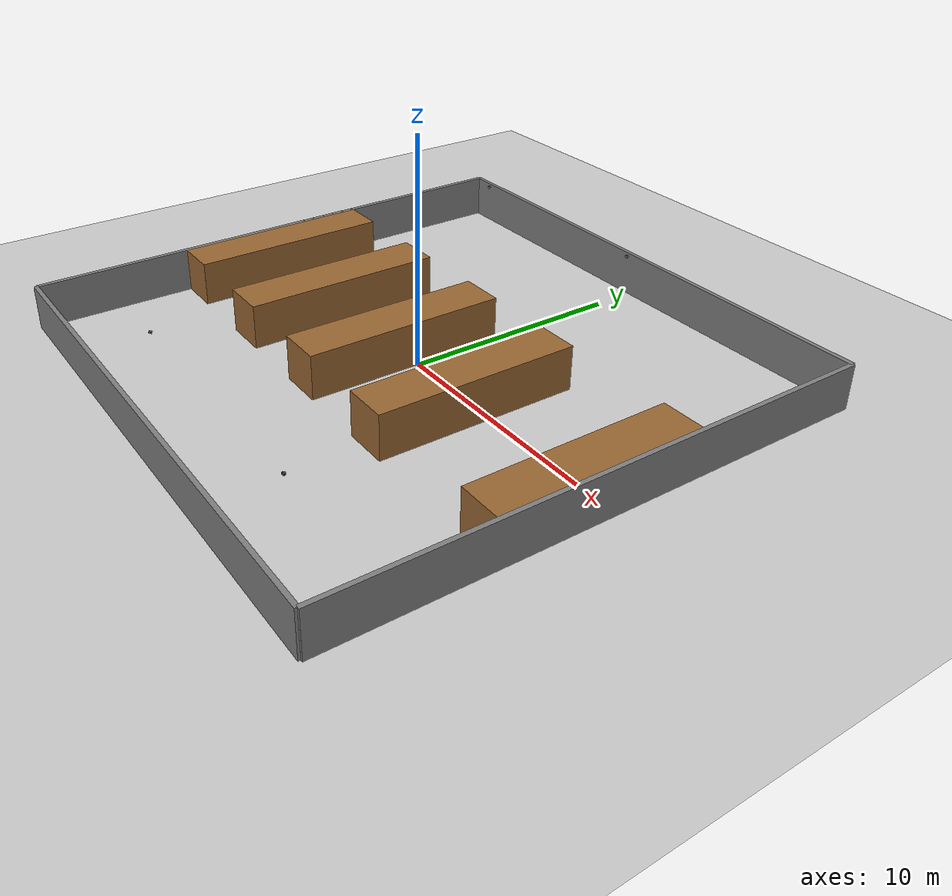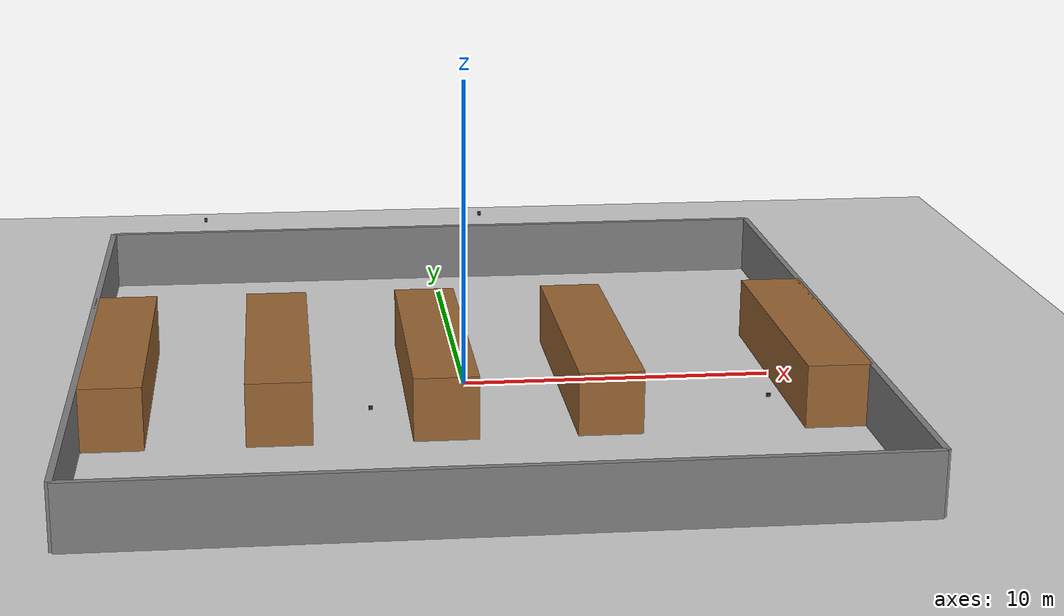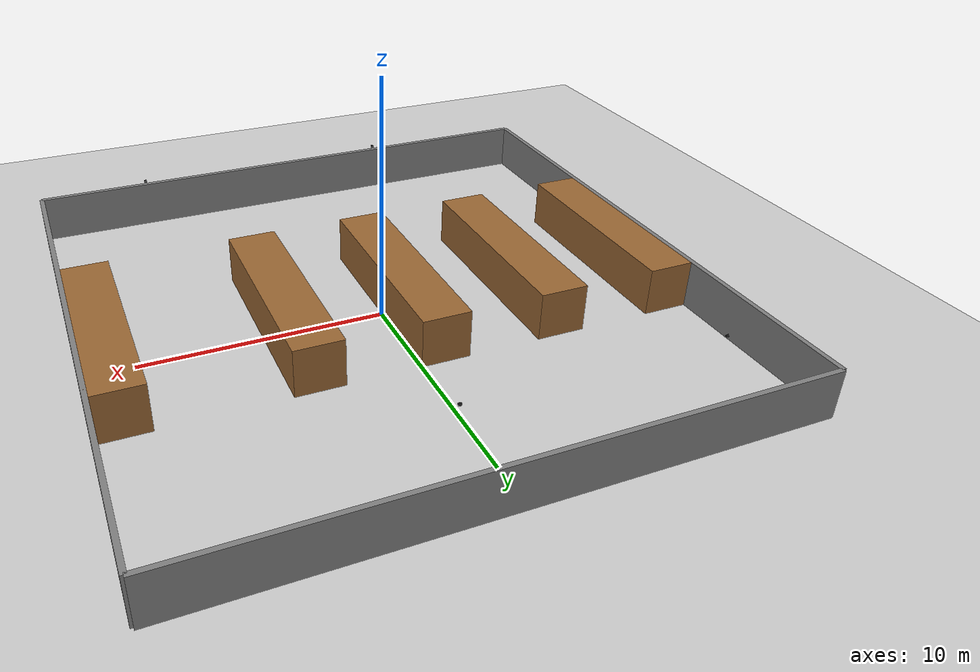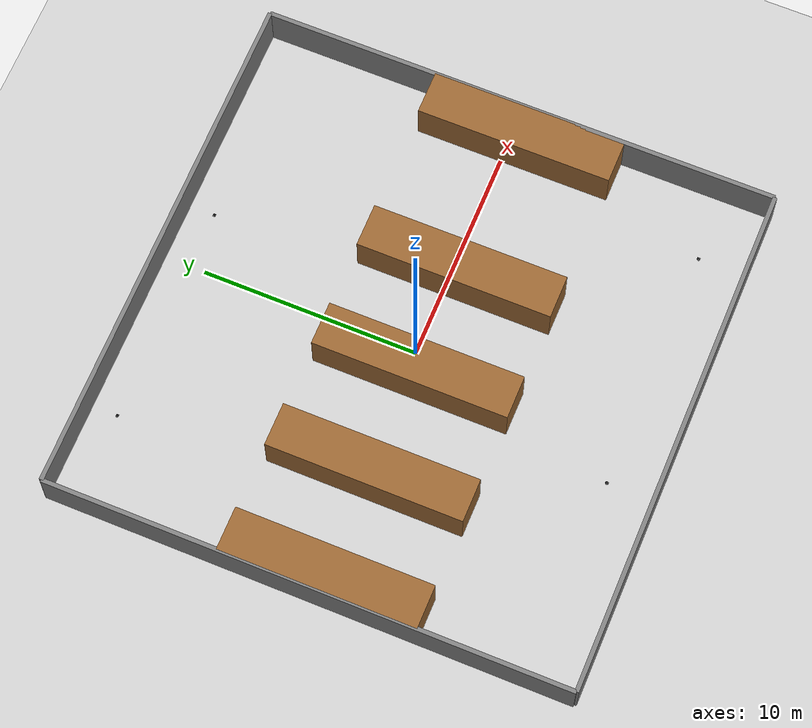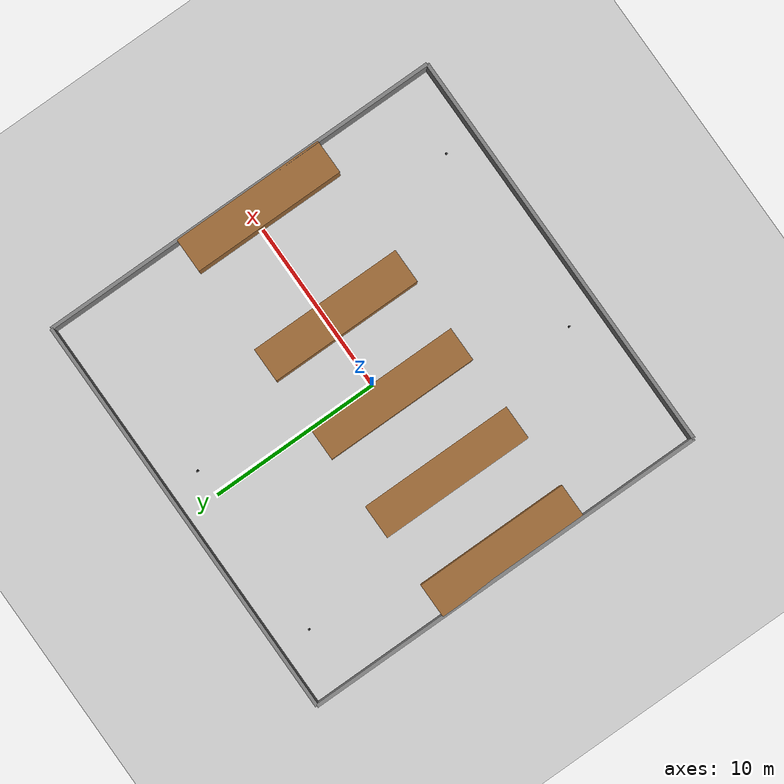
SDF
<?xml version="1.0" ?>
<!-- Warehouse world for PedSim + Gazebo -->
<sdf version="1.5">
  <world name="warehouse">

    <!-- Ground Plane -->
    <include>
      <uri>model://ground_plane</uri>
    </include>

    <include>
      <uri>model://sun</uri>
    </include>

    <!-- Physics settings -->
    <physics type="ode">
      <real_time_update_rate>1000.0</real_time_update_rate>
      <max_step_size>0.001</max_step_size>
      <real_time_factor>1</real_time_factor>
    </physics>

    <!-- Outer walls -->
    <!-- Wall: Left (-12, y) -->
    <model name='wall_left'>
      <static>1</static>
      <link name='link'>
        <pose>-12.0 0.0 1.0 0 0 1.5708</pose>
        <collision name='collision'>
          <geometry>
            <box><size>24.0 0.2 2.0</size></box>
          </geometry>
        </collision>
        <visual name='visual'>
          <geometry>
            <box><size>24.0 0.2 2.0</size></box>
          </geometry>
          <material>
            <ambient>0.5 0.5 0.5 1</ambient>
          </material>
        </visual>
      </link>
    </model>

    <!-- Wall: Right (12, y) -->
    <model name='wall_right'>
      <static>1</static>
      <link name='link'>
        <pose>12.0 0.0 1.0 0 0 1.5708</pose>
        <collision name='collision'>
          <geometry>
            <box><size>24.0 0.2 2.0</size></box>
          </geometry>
        </collision>
        <visual name='visual'>
          <geometry>
            <box><size>24.0 0.2 2.0</size></box>
          </geometry>
          <material>
            <ambient>0.5 0.5 0.5 1</ambient>
          </material>
        </visual>
      </link>
    </model>

    <!-- Wall: Top (x, 12) -->
    <model name='wall_top'>
      <static>1</static>
      <link name='link'>
        <pose>0.0 12.0 1.0 0 0 0</pose>
        <collision name='collision'>
          <geometry>
            <box><size>24.0 0.2 2.0</size></box>
          </geometry>
        </collision>
        <visual name='visual'>
          <geometry>
            <box><size>24.0 0.2 2.0</size></box>
          </geometry>
          <material>
            <ambient>0.5 0.5 0.5 1</ambient>
          </material>
        </visual>
      </link>
    </model>

    <!-- Wall: Bottom (x, -12) -->
    <model name='wall_bottom'>
      <static>1</static>
      <link name='link'>
        <pose>0.0 -12.0 1.0 0 0 0</pose>
        <collision name='collision'>
          <geometry>
            <box><size>24.0 0.2 2.0</size></box>
          </geometry>
        </collision>
        <visual name='visual'>
          <geometry>
            <box><size>24.0 0.2 2.0</size></box>
          </geometry>
          <material>
            <ambient>0.5 0.5 0.5 1</ambient>
          </material>
        </visual>
      </link>
    </model>

    <!-- Shelf 1: x=-11, y from -5 to 4 -->
    <model name='shelf_1'>
      <static>1</static>
      <link name='link'>
        <pose>-11.0 -0.5 1.0 0 0 0</pose>
        <collision name='collision'>
          <geometry>
            <box><size>2.0 9.0 2.0</size></box>
          </geometry>
        </collision>
        <visual name='visual'>
          <geometry>
            <box><size>2.0 9.0 2.0</size></box>
          </geometry>
          <material>
            <ambient>0.6 0.4 0.2 1</ambient>
          </material>
        </visual>
      </link>
    </model>

    <!-- Shelf 2: x=-6, y from -5 to 4 -->
    <model name='shelf_2'>
      <static>1</static>
      <link name='link'>
        <pose>-6.0 -0.5 1.0 0 0 0</pose>
        <collision name='collision'>
          <geometry>
            <box><size>2.0 9.0 2.0</size></box>
          </geometry>
        </collision>
        <visual name='visual'>
          <geometry>
            <box><size>2.0 9.0 2.0</size></box>
          </geometry>
          <material>
            <ambient>0.6 0.4 0.2 1</ambient>
          </material>
        </visual>
      </link>
    </model>

    <!-- Shelf 3: x=-1, y from -5 to 4 -->
    <model name='shelf_3'>
      <static>1</static>
      <link name='link'>
        <pose>-1.0 -0.5 1.0 0 0 0</pose>
        <collision name='collision'>
          <geometry>
            <box><size>2.0 9.0 2.0</size></box>
          </geometry>
        </collision>
        <visual name='visual'>
          <geometry>
            <box><size>2.0 9.0 2.0</size></box>
          </geometry>
          <material>
            <ambient>0.6 0.4 0.2 1</ambient>
          </material>
        </visual>
      </link>
    </model>

    <!-- Shelf 4: x=4, y from -5 to 4 -->
    <model name='shelf_4'>
      <static>1</static>
      <link name='link'>
        <pose>4.0 -0.5 1.0 0 0 0</pose>
        <collision name='collision'>
          <geometry>
            <box><size>2.0 9.0 2.0</size></box>
          </geometry>
        </collision>
        <visual name='visual'>
          <geometry>
            <box><size>2.0 9.0 2.0</size></box>
          </geometry>
          <material>
            <ambient>0.6 0.4 0.2 1</ambient>
          </material>
        </visual>
      </link>
    </model>

    <!-- Shelf 5: x=11, y from -5 to 4 -->
    <model name='shelf_5'>
      <static>1</static>
      <link name='link'>
        <pose>11.0 -0.5 1.0 0 0 0</pose>
        <collision name='collision'>
          <geometry>
            <box><size>2.0 9.0 2.0</size></box>
          </geometry>
        </collision>
        <visual name='visual'>
          <geometry>
            <box><size>2.0 9.0 2.0</size></box>
          </geometry>
          <material>
            <ambient>0.6 0.4 0.2 1</ambient>
          </material>
        </visual>
      </link>
    </model>

    <!-- CCTV Camera 0: position=(-8.5, 10.0), looking down (orientation=-90deg) -->
    <model name="cctv_0">
      <static>true</static>
      <pose>-8.5 10.0 3.0 0 0.5 -1.5708</pose>
      <link name="link">
        <visual name="visual">
          <geometry>
            <box><size>0.1 0.1 0.1</size></box>
          </geometry>
          <material>
            <ambient>0.1 0.1 0.1 1</ambient>
          </material>
        </visual>
        <sensor name="camera" type="camera">
          <camera>
            <horizontal_fov>1.047</horizontal_fov>
            <image>
              <width>640</width>
              <height>480</height>
              <format>R8G8B8</format>
            </image>
            <clip>
              <near>0.1</near>
              <far>20</far>
            </clip>
          </camera>
          <always_on>1</always_on>
          <update_rate>10</update_rate>
          <visualize>true</visualize>
          <plugin name="camera_controller" filename="libgazebo_ros_camera.so">
            <alwaysOn>true</alwaysOn>
            <updateRate>10.0</updateRate>
            <cameraName>cctv_0</cameraName>
            <imageTopicName>image_raw</imageTopicName>
            <cameraInfoTopicName>camera_info</cameraInfoTopicName>
            <frameName>cctv_0_frame</frameName>
          </plugin>
        </sensor>
      </link>
    </model>

    <!-- CCTV Camera 1: position=(-3.5, -10.0), looking up (orientation=90deg) -->
    <model name="cctv_1">
      <static>true</static>
      <pose>-3.5 -10.0 3.0 0 0.5 1.5708</pose>
      <link name="link">
        <visual name="visual">
          <geometry>
            <box><size>0.1 0.1 0.1</size></box>
          </geometry>
          <material>
            <ambient>0.1 0.1 0.1 1</ambient>
          </material>
        </visual>
        <sensor name="camera" type="camera">
          <camera>
            <horizontal_fov>1.047</horizontal_fov>
            <image>
              <width>640</width>
              <height>480</height>
              <format>R8G8B8</format>
            </image>
            <clip>
              <near>0.1</near>
              <far>20</far>
            </clip>
          </camera>
          <always_on>1</always_on>
          <update_rate>10</update_rate>
          <visualize>true</visualize>
          <plugin name="camera_controller" filename="libgazebo_ros_camera.so">
            <alwaysOn>true</alwaysOn>
            <updateRate>10.0</updateRate>
            <cameraName>cctv_1</cameraName>
            <imageTopicName>image_raw</imageTopicName>
            <cameraInfoTopicName>camera_info</cameraInfoTopicName>
            <frameName>cctv_1_frame</frameName>
          </plugin>
        </sensor>
      </link>
    </model>

    <!-- CCTV Camera 2: position=(1.5, 10.0), looking down (orientation=-90deg) -->
    <model name="cctv_2">
      <static>true</static>
      <pose>1.5 10.0 3.0 0 0.5 -1.5708</pose>
      <link name="link">
        <visual name="visual">
          <geometry>
            <box><size>0.1 0.1 0.1</size></box>
          </geometry>
          <material>
            <ambient>0.1 0.1 0.1 1</ambient>
          </material>
        </visual>
        <sensor name="camera" type="camera">
          <camera>
            <horizontal_fov>1.047</horizontal_fov>
            <image>
              <width>640</width>
              <height>480</height>
              <format>R8G8B8</format>
            </image>
            <clip>
              <near>0.1</near>
              <far>20</far>
            </clip>
          </camera>
          <always_on>1</always_on>
          <update_rate>10</update_rate>
          <visualize>true</visualize>
          <plugin name="camera_controller" filename="libgazebo_ros_camera.so">
            <alwaysOn>true</alwaysOn>
            <updateRate>10.0</updateRate>
            <cameraName>cctv_2</cameraName>
            <imageTopicName>image_raw</imageTopicName>
            <cameraInfoTopicName>camera_info</cameraInfoTopicName>
            <frameName>cctv_2_frame</frameName>
          </plugin>
        </sensor>
      </link>
    </model>

    <!-- CCTV Camera 3: position=(7.5, -10.0), looking up (orientation=90deg) -->
    <model name="cctv_3">
      <static>true</static>
      <pose>7.5 -10.0 3.0 0 0.5 1.5708</pose>
      <link name="link">
        <visual name="visual">
          <geometry>
            <box><size>0.1 0.1 0.1</size></box>
          </geometry>
          <material>
            <ambient>0.1 0.1 0.1 1</ambient>
          </material>
        </visual>
        <sensor name="camera" type="camera">
          <camera>
            <horizontal_fov>1.047</horizontal_fov>
            <image>
              <width>640</width>
              <height>480</height>
              <format>R8G8B8</format>
            </image>
            <clip>
              <near>0.1</near>
              <far>20</far>
            </clip>
          </camera>
          <always_on>1</always_on>
          <update_rate>10</update_rate>
          <visualize>true</visualize>
          <plugin name="camera_controller" filename="libgazebo_ros_camera.so">
            <alwaysOn>true</alwaysOn>
            <updateRate>10.0</updateRate>
            <cameraName>cctv_3</cameraName>
            <imageTopicName>image_raw</imageTopicName>
            <cameraInfoTopicName>camera_info</cameraInfoTopicName>
            <frameName>cctv_3_frame</frameName>
          </plugin>
        </sensor>
      </link>
    </model>

    <!-- ActorPosesPlugin: Updates pedestrian poses from PedSim -->
    <plugin name="ActorPosesPlugin" filename="libActorPosesPlugin.so">
    </plugin>

  </world>
</sdf>
